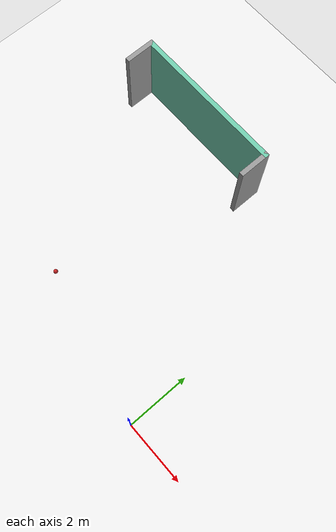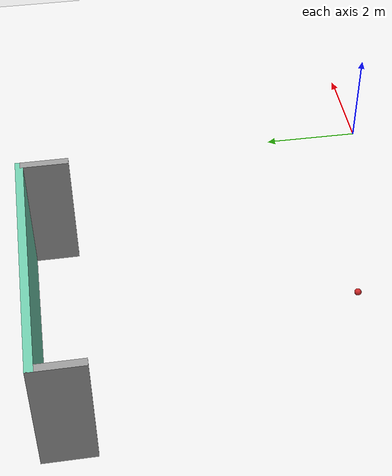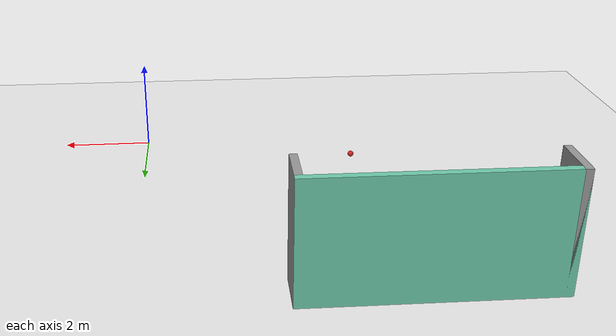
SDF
<sdf version="1.7">
 <world name="default">
  <model name="ground_plane">
   <static>1</static>
   <link name="link">
    <collision name="collision">
     <geometry><plane><normal>0 0 1</normal><size>100 100</size></plane></geometry>
     <surface><friction><ode><mu>100</mu><mu2>50</mu2></ode></friction></surface>
    </collision>
    <visual name="visual">
     <cast_shadows>0</cast_shadows>
     <geometry><plane><normal>0 0 1</normal><size>100 100</size></plane></geometry>
     <material>
      <script><uri>file://media/materials/scripts/gazebo.material</uri><name>Gazebo/White</name></script>
     </material>
    </visual>
   </link>
  </model>
  <light name="sun" type="directional">
   <pose>0 0 10 0 -0 0</pose>
   <diffuse>0.8 0.8 0.8 1</diffuse>
   <specular>0.2 0.2 0.2 1</specular>
   <attenuation>
    <range>1000</range>
    <constant>0.9</constant>
    <linear>0.01</linear>
    <quadratic>0.001</quadratic>
   </attenuation>
   <direction>-0.5 0.1 -0.9</direction>
   <spot><inner_angle>0</inner_angle><outer_angle>0</outer_angle><falloff>0</falloff></spot>
  </light>
  <scene><shadows>0</shadows><ambient>0.4 0.4 0.4 1</ambient><background>0.7 0.7 0.7 1</background></scene>
  <physics type="ode">
   <real_time_update_rate>1000</real_time_update_rate>
   <max_step_size>0.001</max_step_size>
   <real_time_factor>1</real_time_factor>
   <ode>
    <solver>
     <type>quick</type>
     <iters>150</iters>
     <precon_iters>0</precon_iters>
     <sor>1.4</sor>
     <use_dynamic_moi_rescaling>1</use_dynamic_moi_rescaling>
    </solver>
    <constraints>
     <cfm>1e-05</cfm>
     <erp>0.2</erp>
     <contact_max_correcting_vel>2000</contact_max_correcting_vel>
     <contact_surface_layer>0.01</contact_surface_layer>
    </constraints>
   </ode>
  </physics>
  <gravity>0 0 -9.8</gravity>
  <magnetic_field>6e-06 2.3e-05 -4.2e-05</magnetic_field>
  <atmosphere type="adiabatic"/>
  <spherical_coordinates>
   <surface_model>EARTH_WGS84</surface_model>
   <latitude_deg>0</latitude_deg>
   <longitude_deg>0</longitude_deg>
   <elevation>0</elevation>
   <heading_deg>0</heading_deg>
  </spherical_coordinates>
  <model name="goal_0">
   <pose>-5.33717 9.50075 0 0 -0 0</pose>
   <link name="Wall_12">
    <collision name="Wall_12_Collision">
     <geometry><box><size>1 0.15 2.5</size></box></geometry>
     <pose>0 0 1.25 0 -0 0</pose>
    </collision>
    <visual name="Wall_12_Visual">
     <pose>0 0 1.25 0 -0 0</pose>
     <geometry><box><size>1 0.15 2.5</size></box></geometry>
     <material>
      <script><uri>file://media/materials/scripts/gazebo.material</uri><name>Gazebo/Grey</name></script>
      <ambient>1 1 1 1</ambient>
     </material>
     <meta><layer>0</layer></meta>
    </visual>
    <pose>-2.425 -2.46919 0 0 -0 1.5708</pose>
   </link>
   <link name="Wall_13">
    <collision name="Wall_13_Collision">
     <geometry><box><size>5 0.15 2.5</size></box></geometry>
     <pose>0 0 1.25 0 -0 0</pose>
    </collision>
    <visual name="Wall_13_Visual">
     <pose>0 0 1.25 0 -0 0</pose>
     <geometry><box><size>5 0.15 2.5</size></box></geometry>
     <material>
      <script><uri>file://media/materials/scripts/gazebo.material</uri><name>Gazebo/Grey</name></script>
      <ambient>0.435294 0.796078 0.67451 1</ambient>
     </material>
     <meta><layer>0</layer></meta>
    </visual>
    <pose>0 -2.04419 0 0 -0 0</pose>
   </link>
   <link name="Wall_14">
    <collision name="Wall_14_Collision">
     <geometry><box><size>1 0.15 2.5</size></box></geometry>
     <pose>0 0 1.25 0 -0 0</pose>
    </collision>
    <visual name="Wall_14_Visual">
     <pose>0 0 1.25 0 -0 0</pose>
     <geometry><box><size>1 0.15 2.5</size></box></geometry>
     <material>
      <script><uri>file://media/materials/scripts/gazebo.material</uri><name>Gazebo/Grey</name></script>
      <ambient>1 1 1 1</ambient>
     </material>
     <meta><layer>0</layer></meta>
    </visual>
    <pose>2.425 -2.46919 0 0 -0 -1.5708</pose>
   </link>
   <static>1</static>
  </model>
  <model name="RoboCup SPL Ball">
   <static>0</static>
   <link name="ball">
    <inertial>
     <mass>0.0056</mass>
     <inertia>
      <ixx>2.37e-06</ixx>
      <iyy>2.37e-06</iyy>
      <izz>2.37e-06</izz>
      <ixy>0</ixy>
      <ixz>0</ixz>
      <iyz>0</iyz>
     </inertia>
    </inertial>
    <collision name="collision">
     <geometry><sphere><radius>0.0682599</radius></sphere></geometry>
     <surface><friction><ode><mu>0.4</mu><mu2>0.4</mu2></ode></friction></surface>
    </collision>
    <visual name="visual">
     <geometry><sphere><radius>0.0682599</radius></sphere></geometry>
     <material>
      <script><uri>file://media/materials/scripts/gazebo.material</uri><name>Gazebo/RedBright</name></script>
     </material>
    </visual>
    <velocity_decay><linear>0.2</linear></velocity_decay>
   </link>
   <pose>-4.87493 1.18474 0.06826 2.0783 -0.197813 -0.176886</pose>
  </model>
 </world>
</sdf>
